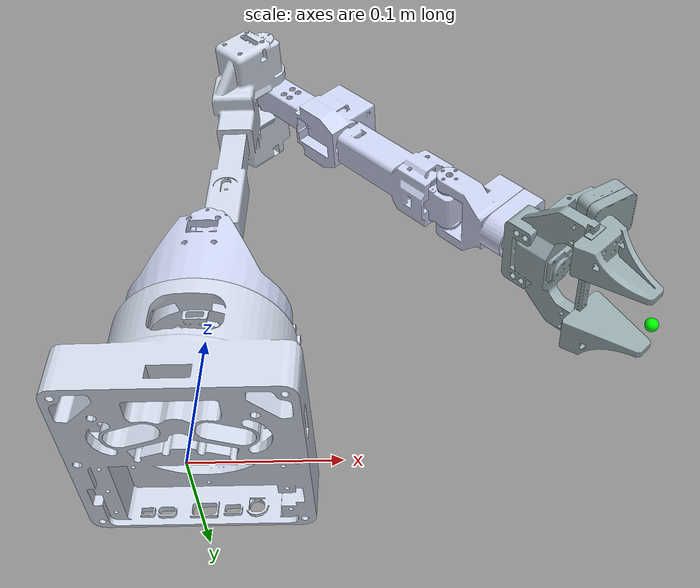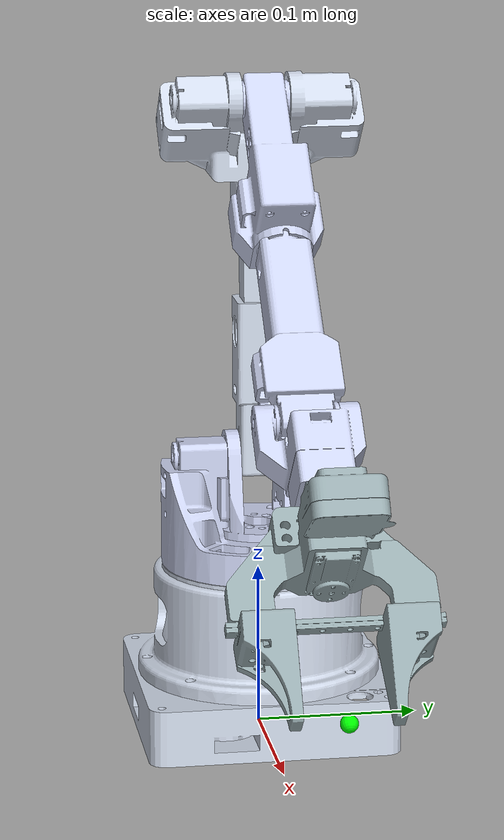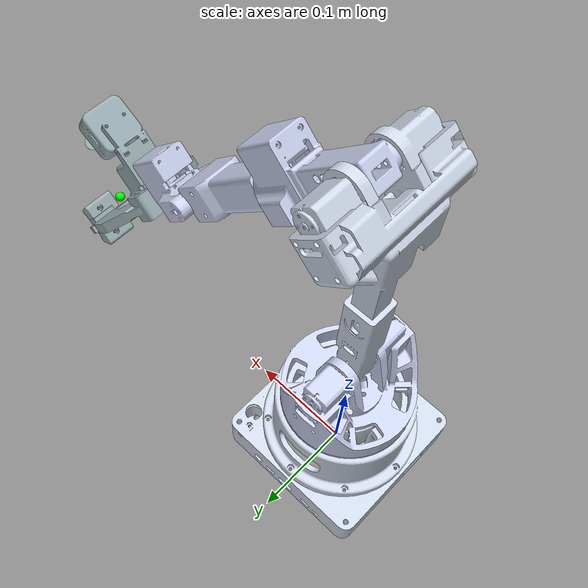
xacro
<?xml version="1.0"?>
<robot xmlns:xacro="http://www.ros.org/wiki/xacro" name="Alicia_D_v5_6_gripper_50mm">
    <xacro:arg name="initial_positions_file" default="initial_positions.yaml" />
    <xacro:arg name="hw_port" default="" />
    <xacro:arg name="hw_debug_mode" default="false" />
    <xacro:arg name="hw_use_open_loop_state" default="false" />
    <xacro:arg name="hw_gripper_type" default="50mm" />
    <xacro:arg name="hw_default_speed_deg_s" default="20.0" />
    <xacro:arg name="hw_feedback_timeout_s" default="0.5" />

    <!-- Import alicia_d_descriptions urdf file for v5_6 50mm -->
    <xacro:include filename="$(find alicia_d_descriptions)/urdf/Alicia_D_v5_6/Alicia_D_v5_6_gripper_50mm.urdf" />

    <!-- Import control_xacro -->
    <xacro:include filename="alicia_d_descriptions.ros2_control.xacro" />

    <!-- Use ros2_control with configurable hardware interface -->
    <xacro:alicia_d_descriptions_ros2_control
        name="AliciaDHardware"
        initial_positions_file="$(arg initial_positions_file)"
        hw_port="$(arg hw_port)"
        hw_debug_mode="$(arg hw_debug_mode)"
        hw_use_open_loop_state="$(arg hw_use_open_loop_state)"
        hw_gripper_type="$(arg hw_gripper_type)"
        hw_default_speed_deg_s="$(arg hw_default_speed_deg_s)"
        hw_feedback_timeout_s="$(arg hw_feedback_timeout_s)"/>

</robot>

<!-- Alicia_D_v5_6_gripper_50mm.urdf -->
<robot
  name="Alicia_D_v5_6_gripper_50mm">
 <mujoco>
    <compiler meshdir="package://alicia_d_descriptions/meshes/Alicia_D_v5_6/gripper_50mm/" discardvisual="false" />
    <contact>
      <exclude body1="base_link" body2="Link1"/>
      <exclude body1="Link1" body2="Link2"/>
      <exclude body1="Link2" body2="Link3"/>
      <exclude body1="Link3" body2="Link4"/>
      <exclude body1="Link4" body2="Link5"/>
      <exclude body1="Link5" body2="Link6"/>
      <exclude body1="Link6" body2="left_gripper"/>
      <exclude body1="left_gripper" body2="right_gripper"/>
    </contact>
  </mujoco>

  <link
    name="base_link">
    <inertial>
      <origin
        xyz="-0.00082623480513569 -0.00797844274231199 0.0457675129193652"
        rpy="0 0 0" />
      <mass
        value="0.733961424024115" />
      <inertia
        ixx="0.00138410344770525"
        ixy="5.67201110400179E-05"
        ixz="-5.14360165173003E-07"
        iyy="0.00173617223701657"
        iyz="1.48652204618575E-05"
        izz="0.00274667683202573" />
    </inertial>
    <visual>
      <origin
        xyz="0 0 0"
        rpy="0 0 0" />
      <geometry>
        <mesh
          filename="package://alicia_d_descriptions/meshes/Alicia_D_v5_6/gripper_50mm/base_link.STL" />
      </geometry>
      <material
        name="">
        <color
          rgba="0.807843137254902 0.843137254901961 0.905882352941176 1" />
      </material>
    </visual>
    <collision>
      <origin
        xyz="0 0 0"
        rpy="0 0 0" />
      <geometry>
        <mesh
          filename="package://alicia_d_descriptions/meshes/Alicia_D_v5_6/gripper_50mm/base_link.STL" />
      </geometry>
    </collision>
  </link>
  <link
    name="Link1">
    <inertial>
      <origin
        xyz="0.000230595970657381 1.29045409715261E-05 0.00303135669887118"
        rpy="0 0 0" />
      <mass
        value="0.195233453613076" />
      <inertia
        ixx="0.000258351125080287"
        ixy="8.79363230587616E-07"
        ixz="6.87511805714776E-07"
        iyy="0.000149307709395501"
        iyz="1.07703111544012E-06"
        izz="0.000339791274038166" />
    </inertial>
    <visual>
      <origin
        xyz="0 0 0"
        rpy="0 0 0" />
      <geometry>
        <mesh
          filename="package://alicia_d_descriptions/meshes/Alicia_D_v5_6/gripper_50mm/Link1.STL" />
      </geometry>
      <material
        name="">
        <color
          rgba="0.796078431372549 0.823529411764706 0.937254901960784 1" />
      </material>
    </visual>
    <collision>
      <origin
        xyz="0 0 0"
        rpy="0 0 0" />
      <geometry>
        <mesh
          filename="package://alicia_d_descriptions/meshes/Alicia_D_v5_6/gripper_50mm/Link1.STL" />
      </geometry>
    </collision>
  </link>
  <joint
    name="Joint1"
    type="revolute">
    <origin
      xyz="0 0 0.1295"
      rpy="0 0 0" />
    <parent
      link="base_link" />
    <child
      link="Link1" />
    <axis
      xyz="0 0 1" />
    <limit
      lower="-2.749"
      upper="2.749"
      effort="5"
      velocity="12" />
  </joint>
  <link
    name="Link2">
    <inertial>
      <origin
        xyz="-0.15058869562262 0.000866069014338703 -0.00065095059586996"
        rpy="0 0 0" />
      <mass
        value="0.207033693061784" />
      <inertia
        ixx="0.000128135500181764"
        ixy="-1.3851037649769E-07"
        ixz="-4.91817924788182E-06"
        iyy="0.000205708390605209"
        iyz="3.50025103450784E-07"
        izz="0.000122721347332604" />
    </inertial>
    <visual>
      <origin
        xyz="0 0 0"
        rpy="0 0 0" />
      <geometry>
        <mesh
          filename="package://alicia_d_descriptions/meshes/Alicia_D_v5_6/gripper_50mm/Link2.STL" />
      </geometry>
      <material
        name="">
        <color
          rgba="0.807843137254902 0.843137254901961 0.905882352941176 1" />
      </material>
    </visual>
    <collision>
      <origin
        xyz="0 0 0"
        rpy="0 0 0" />
      <geometry>
        <mesh
          filename="package://alicia_d_descriptions/meshes/Alicia_D_v5_6/gripper_50mm/Link2.STL" />
      </geometry>
    </collision>
  </link>
  <joint
    name="Joint2"
    type="revolute">
    <origin
      xyz="0 0 0.04287"
      rpy="1.5708 1.5708 0" />
    <parent
      link="Link1" />
    <child
      link="Link2" />
    <axis
      xyz="0 0 1" />
    <limit
      lower="-1.5708"
      upper="1.5708"
      effort="5"
      velocity="12" />
  </joint>
  <link
    name="Link3">
    <inertial>
      <origin
        xyz="0.00248143782929389 -0.055786319810667 0.000269720725051862"
        rpy="0 0 0" />
      <mass
        value="0.0845575681430809" />
      <inertia
        ixx="7.61918370068429E-05"
        ixy="2.26498116289359E-06"
        ixz="-3.82299515503443E-07"
        iyy="2.87941478239853E-05"
        iyz="5.38445390787693E-06"
        izz="8.04370664405606E-05" />
    </inertial>
    <visual>
      <origin
        xyz="0 0 0"
        rpy="0 0 0" />
      <geometry>
        <mesh
          filename="package://alicia_d_descriptions/meshes/Alicia_D_v5_6/gripper_50mm/Link3.STL" />
      </geometry>
      <material
        name="">
        <color
          rgba="0.792156862745098 0.819607843137255 0.933333333333333 1" />
      </material>
    </visual>
    <collision>
      <origin
        xyz="0 0 0"
        rpy="0 0 0" />
      <geometry>
        <mesh
          filename="package://alicia_d_descriptions/meshes/Alicia_D_v5_6/gripper_50mm/Link3.STL" />
      </geometry>
    </collision>
  </link>
  <joint
    name="Joint3"
    type="revolute">
    <origin
      xyz="-0.22367 0.022492 -5E-05"
      rpy="0 0 2.3562" />
    <parent
      link="Link2" />
    <child
      link="Link3" />
    <axis
      xyz="0 0 1" />
    <limit
      lower="-0.78"
      upper="3.14"
      effort="5"
      velocity="12" />
  </joint>
  <link
    name="Link4">
    <inertial>
      <origin
        xyz="0.000298365499180664 -0.000601368964523881 0.0659740390649536"
        rpy="0 0 0" />
      <mass
        value="0.0653695951968861" />
      <inertia
        ixx="7.03004188045845E-05"
        ixy="-9.68417862923774E-09"
        ixz="-7.5013170593354E-07"
        iyy="6.87470297844684E-05"
        iyz="4.45271918047396E-08"
        izz="1.68226189346781E-05" />
    </inertial>
    <visual>
      <origin
        xyz="0 0 0"
        rpy="0 0 0" />
      <geometry>
        <mesh
          filename="package://alicia_d_descriptions/meshes/Alicia_D_v5_6/gripper_50mm/Link4.STL" />
      </geometry>
      <material
        name="">
        <color
          rgba="0.792156862745098 0.819607843137255 0.933333333333333 1" />
      </material>
    </visual>
    <collision>
      <origin
        xyz="0 0 0"
        rpy="0 0 0" />
      <geometry>
        <mesh
          filename="package://alicia_d_descriptions/meshes/Alicia_D_v5_6/gripper_50mm/Link4.STL" />
      </geometry>
    </collision>
  </link>
  <joint
    name="Joint4"
    type="revolute">
    <origin
      xyz="-0.00211 -0.099 0.0002"
      rpy="-1.5708 0 -3.1416" />
    <parent
      link="Link3" />
    <child
      link="Link4" />
    <axis
      xyz="0 0 -1" />
    <limit
      lower="-2.79"
      upper="2.79"
      effort="5"
      velocity="12" />
  </joint>
  <link
    name="Link5">
    <inertial>
      <origin
        xyz="-0.0113684233807493 -0.0308687469815376 0.000870449932961739"
        rpy="0 0 0" />
      <mass
        value="0.0507639016868948" />
      <inertia
        ixx="1.87701017075205E-05"
        ixy="-2.01098609908345E-06"
        ixz="5.15226500256369E-08"
        iyy="2.5102103446527E-05"
        iyz="-4.22412451208311E-08"
        izz="1.72571710040125E-05" />
    </inertial>
    <visual>
      <origin
        xyz="0 0 0"
        rpy="0 0 0" />
      <geometry>
        <mesh
          filename="package://alicia_d_descriptions/meshes/Alicia_D_v5_6/gripper_50mm/Link5.STL" />
      </geometry>
      <material
        name="">
        <color
          rgba="0.792156862745098 0.819607843137255 0.933333333333333 1" />
      </material>
    </visual>
    <collision>
      <origin
        xyz="0 0 0"
        rpy="0 0 0" />
      <geometry>
        <mesh
          filename="package://alicia_d_descriptions/meshes/Alicia_D_v5_6/gripper_50mm/Link5.STL" />
      </geometry>
    </collision>
  </link>
  <joint
    name="Joint5"
    type="revolute">
    <origin
      xyz="0 -0.0005 0.12235"
      rpy="-1.5708 0 0" />
    <parent
      link="Link4" />
    <child
      link="Link5" />
    <axis
      xyz="0 0 -1" />
    <limit
      lower="-1.57"
      upper="1.57"
      effort="5"
      velocity="12" />
  </joint>
  <link
    name="Link6">
    <inertial>
      <origin
        xyz="-0.0274897808293123 1.7881629110631E-05 -0.0342551063340634"
        rpy="0 0 0" />
      <mass
        value="0.130364883211194" />
      <inertia
        ixx="7.59035802571275E-05"
        ixy="-1.14547559093319E-08"
        ixz="3.58078000062359E-06"
        iyy="3.53175388318204E-05"
        iyz="2.09250436990744E-08"
        izz="8.31976009590605E-05" />
    </inertial>
    <visual>
      <origin
        xyz="0 0 0"
        rpy="0 0 0" />
      <geometry>
        <mesh
          filename="package://alicia_d_descriptions/meshes/Alicia_D_v5_6/gripper_50mm/Link6.STL" />
      </geometry>
      <material
        name="">
        <color
          rgba="0.592156862745098 0.666666666666667 0.682352941176471 1" />
      </material>
    </visual>
    <collision>
      <origin
        xyz="0 0 0"
        rpy="0 0 0" />
      <geometry>
        <mesh
          filename="package://alicia_d_descriptions/meshes/Alicia_D_v5_6/gripper_50mm/Link6.STL" />
      </geometry>
    </collision>
  </link>
  <joint
    name="Joint6"
    type="revolute">
    <origin
      xyz="-0.00385 -0.0575 0.001"
      rpy="-1.5708 0 0" />
    <parent
      link="Link5" />
    <child
      link="Link6" />
    <axis
      xyz="0 0 1" />
    <limit
      lower="-3.14"
      upper="3.14"
      effort="5"
      velocity="12" />
  </joint>
  <link
    name="left_gripper">
    <inertial>
      <origin
        xyz="2.97087521250461E-08 -0.0434087591943519 -0.0106558526512254"
        rpy="0 0 0" />
      <mass
        value="0.025646112167786" />
      <inertia
        ixx="6.46830326573765E-06"
        ixy="-2.39543799612646E-11"
        ixz="4.63721294101229E-12"
        iyy="5.13428741941792E-06"
        iyz="-1.26432048814187E-06"
        izz="8.03606347912564E-06" />
    </inertial>
    <visual>
      <origin
        xyz="0 0 0"
        rpy="0 0 0" />
      <geometry>
        <mesh
          filename="package://alicia_d_descriptions/meshes/Alicia_D_v5_6/gripper_50mm/left_gripper.STL" />
      </geometry>
      <material
        name="">
        <color
          rgba="0.592156862745098 0.666666666666667 0.682352941176471 1" />
      </material>
    </visual>
    <collision>
      <origin
        xyz="0 0 0"
        rpy="0 0 0" />
      <geometry>
        <mesh
          filename="package://alicia_d_descriptions/meshes/Alicia_D_v5_6/gripper_50mm/left_gripper.STL" />
      </geometry>
    </collision>
  </link>
  <joint
    name="Gripper"
    type="prismatic">
    <origin
      xyz="0.000199999999998979 0.0254999999999971 -0.130979659620445"
      rpy="-1.5707963267949 0 -3.14159265358979" />
    <parent
      link="Link6" />
    <child
      link="left_gripper" />
    <axis
      xyz="0 0 1" />
    <limit
      lower="0"
      upper="0.025"
      effort="5"
      velocity="12" />
  </joint>
  <link
    name="right_gripper">
    <inertial>
      <origin
        xyz="2.97087521805572E-08 0.0434087591943518 0.0106558526512254"
        rpy="0 0 0" />
      <mass
        value="0.025646112167786" />
      <inertia
        ixx="6.46830326573765E-06"
        ixy="2.3954379953853E-11"
        ixz="-4.63721294505372E-12"
        iyy="5.13428741941794E-06"
        iyz="-1.26432048814187E-06"
        izz="8.03606347912563E-06" />
    </inertial>
    <visual>
      <origin
        xyz="0 0 0"
        rpy="0 0 0" />
      <geometry>
        <mesh
          filename="package://alicia_d_descriptions/meshes/Alicia_D_v5_6/gripper_50mm/right_gripper.STL" />
      </geometry>
      <material
        name="">
        <color
          rgba="0.592156862745098 0.666666666666667 0.682352941176471 1" />
      </material>
    </visual>
    <collision>
      <origin
        xyz="0 0 0"
        rpy="0 0 0" />
      <geometry>
        <mesh
          filename="package://alicia_d_descriptions/meshes/Alicia_D_v5_6/gripper_50mm/right_gripper.STL" />
      </geometry>
    </collision>
  </link>
  <joint
    name="right_finger"
    type="prismatic">
    <origin
      xyz="0.0002 -0.0255 -0.13098"
      rpy="1.5708 0 0" />
    <parent
      link="Link6" />
    <child
      link="right_gripper" />
    <axis
      xyz="0 0 1" />
    <limit
      lower="-0.025"
      upper="0"
      effort="5"
      velocity="12" />
    <mimic joint="Gripper" multiplier="-1" offset="0"/>

  </joint>

  <link
    name="tool0">
    <visual>
      <origin
        xyz="0 0 0"
        rpy="0 0 0" />
      <geometry>
        <sphere radius="0.005" />
      </geometry>
      <material
        name="green_virtual_sphere_material">
        <color
          rgba="0 1 0 1" />
      </material>
    </visual>
  </link>
  <joint
    name="finger"
    type="fixed">
    <origin
      xyz="0.0002 0 -0.13098"
      rpy="0 0 0" />
    <parent
      link="Link6" />
    <child
      link="tool0" />
    <axis
      xyz="0 0 0" />
  </joint>
</robot>
